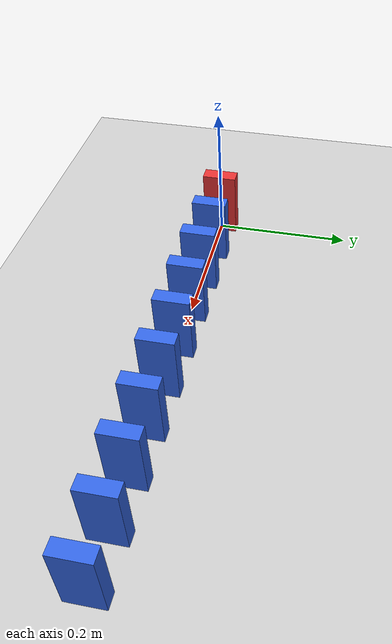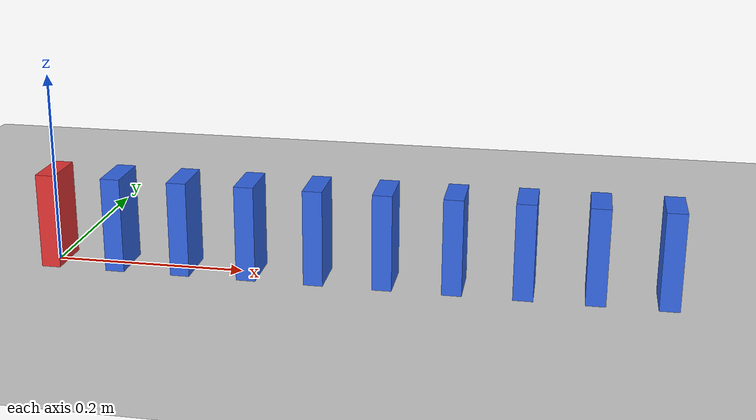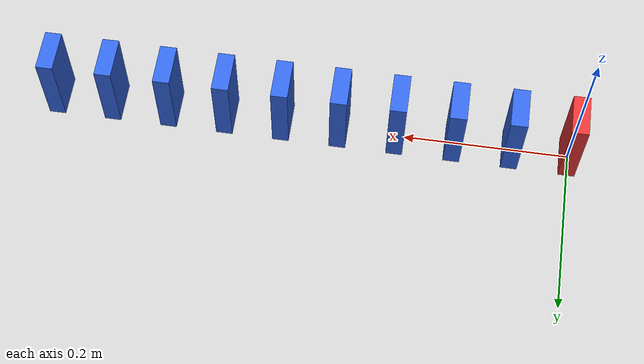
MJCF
<mujoco model="domino_chain">
  <option timestep="0.002" gravity="0 0 -9.81"/>
  <visual>
    <global offwidth="1280" offheight="720"/>
  </visual>
  <worldbody>
    <light name="sun" pos="0.3 -0.5 1.5" dir="0 0.3 -1" directional="true"/>
    <geom name="floor" type="plane" size="2 2 0.1" rgba="0.8 0.8 0.8 1" friction="0.8 0.005 0.0001"/>
    <body name="domino1" pos="0 0 0.05">
      <freejoint/>
      <geom name="domino1_geom" type="box" size="0.01 0.025 0.05" density="650" friction="0.6 0.005 0.0001" rgba="0.9 0.2 0.2 1"/>
    </body>
    <body name="domino2" pos="0.07 0 0.05">
      <freejoint/>
      <geom name="domino2_geom" type="box" size="0.01 0.025 0.05" density="650" friction="0.6 0.005 0.0001" rgba="0.2 0.4 0.9 1"/>
    </body>
    <body name="domino3" pos="0.14 0 0.05">
      <freejoint/>
      <geom name="domino3_geom" type="box" size="0.01 0.025 0.05" density="650" friction="0.6 0.005 0.0001" rgba="0.2 0.4 0.9 1"/>
    </body>
    <body name="domino4" pos="0.21 0 0.05">
      <freejoint/>
      <geom name="domino4_geom" type="box" size="0.01 0.025 0.05" density="650" friction="0.6 0.005 0.0001" rgba="0.2 0.4 0.9 1"/>
    </body>
    <body name="domino5" pos="0.28 0 0.05">
      <freejoint/>
      <geom name="domino5_geom" type="box" size="0.01 0.025 0.05" density="650" friction="0.6 0.005 0.0001" rgba="0.2 0.4 0.9 1"/>
    </body>
    <body name="domino6" pos="0.35 0 0.05">
      <freejoint/>
      <geom name="domino6_geom" type="box" size="0.01 0.025 0.05" density="650" friction="0.6 0.005 0.0001" rgba="0.2 0.4 0.9 1"/>
    </body>
    <body name="domino7" pos="0.42 0 0.05">
      <freejoint/>
      <geom name="domino7_geom" type="box" size="0.01 0.025 0.05" density="650" friction="0.6 0.005 0.0001" rgba="0.2 0.4 0.9 1"/>
    </body>
    <body name="domino8" pos="0.49 0 0.05">
      <freejoint/>
      <geom name="domino8_geom" type="box" size="0.01 0.025 0.05" density="650" friction="0.6 0.005 0.0001" rgba="0.2 0.4 0.9 1"/>
    </body>
    <body name="domino9" pos="0.56 0 0.05">
      <freejoint/>
      <geom name="domino9_geom" type="box" size="0.01 0.025 0.05" density="650" friction="0.6 0.005 0.0001" rgba="0.2 0.4 0.9 1"/>
    </body>
    <body name="domino10" pos="0.63 0 0.05">
      <freejoint/>
      <geom name="domino10_geom" type="box" size="0.01 0.025 0.05" density="650" friction="0.6 0.005 0.0001" rgba="0.2 0.4 0.9 1"/>
    </body>
  </worldbody>
  <keyframe>
    <key name="start" qpos="0 0 0.05 1 0 0 0  0.07 0 0.05 1 0 0 0  0.14 0 0.05 1 0 0 0  0.21 0 0.05 1 0 0 0  0.28 0 0.05 1 0 0 0  0.35 0 0.05 1 0 0 0  0.42 0 0.05 1 0 0 0  0.49 0 0.05 1 0 0 0  0.56 0 0.05 1 0 0 0  0.63 0 0.05 1 0 0 0" qvel="0.15 0 0.03 0 3 0  0 0 0 0 0 0  0 0 0 0 0 0  0 0 0 0 0 0  0 0 0 0 0 0  0 0 0 0 0 0  0 0 0 0 0 0  0 0 0 0 0 0  0 0 0 0 0 0  0 0 0 0 0 0"/>
  </keyframe>
</mujoco>
